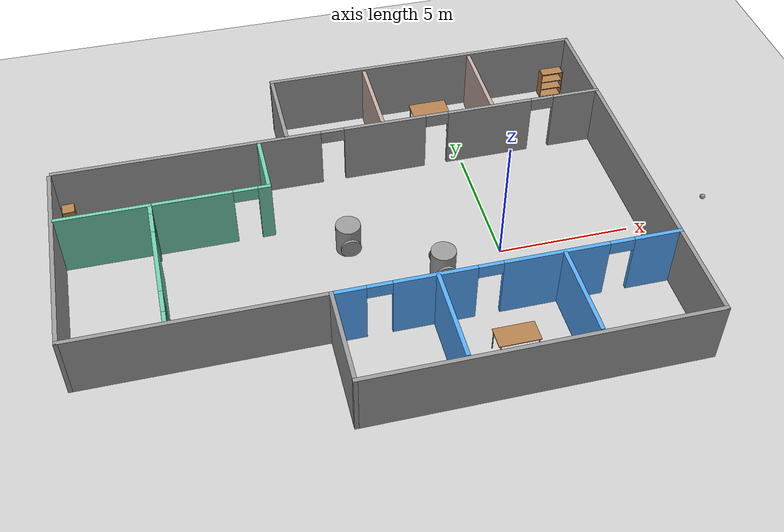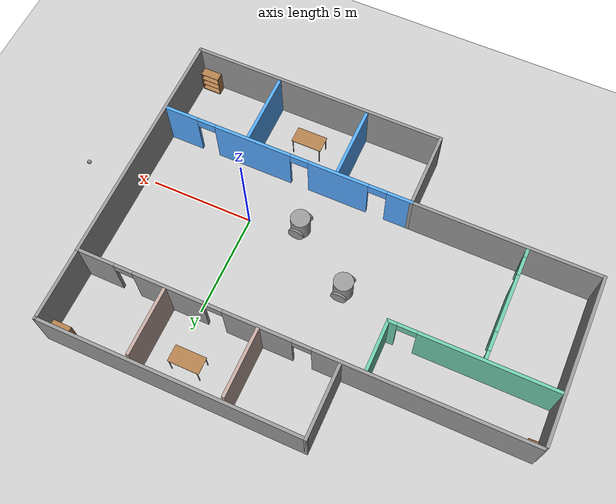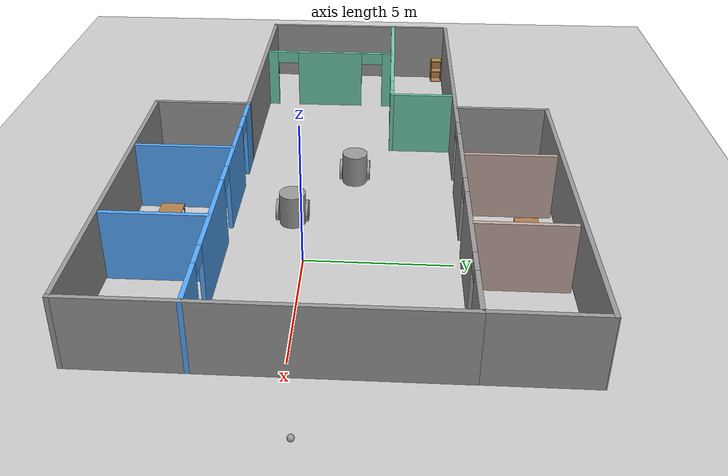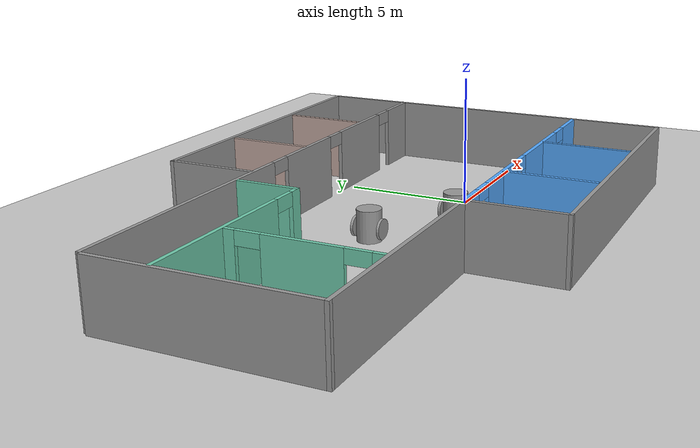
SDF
<sdf version="1.6">
 <world name="default">
  <light name="sun" type="directional">
   <pose>0 0 10 0 -0 0</pose>
   <diffuse>0.8 0.8 0.8 1</diffuse>
   <specular>0.2 0.2 0.2 1</specular>
   <attenuation>
    <range>1000</range>
    <constant>0.9</constant>
    <linear>0.01</linear>
    <quadratic>0.001</quadratic>
   </attenuation>
   <direction>-0.5 0.1 -0.9</direction>
  </light>
  <model name="ground_plane">
   <static>1</static>
   <link name="link">
    <collision name="collision">
     <geometry><plane><normal>0 0 1</normal><size>100 100</size></plane></geometry>
     <surface>
      <contact><collide_bitmask>65535</collide_bitmask></contact>
      <friction><ode><mu>100</mu><mu2>50</mu2></ode></friction>
     </surface>
    </collision>
    <visual name="visual">
     <cast_shadows>0</cast_shadows>
     <geometry><plane><normal>0 0 1</normal><size>100 100</size></plane></geometry>
     <material>
      <script><uri>file://media/materials/scripts/gazebo.material</uri><name>Gazebo/Grey</name></script>
     </material>
    </visual>
   </link>
  </model>
  <gravity>0 0 -9.8</gravity>
  <magnetic_field>6e-06 2.3e-05 -4.2e-05</magnetic_field>
  <atmosphere type="adiabatic"/>
  <physics name="default_physics" default="0" type="ode">
   <max_step_size>0.001</max_step_size>
   <real_time_factor>1</real_time_factor>
   <real_time_update_rate>1000</real_time_update_rate>
  </physics>
  <scene><ambient>0.4 0.4 0.4 1</ambient><background>0.7 0.7 0.7 1</background><shadows>1</shadows></scene>
  <spherical_coordinates>
   <surface_model>EARTH_WGS84</surface_model>
   <latitude_deg>0</latitude_deg>
   <longitude_deg>0</longitude_deg>
   <elevation>0</elevation>
   <heading_deg>0</heading_deg>
  </spherical_coordinates>
  <model name="Building">
   <pose>-5.09713 1.21876 0 0 -0 0</pose>
   <link name="Wall_0">
    <pose>0.05 4.06916 0 0 -0 0</pose>
    <visual name="Wall_0_Visual_0">
     <pose>-5.59523 0 1.25 0 -0 0</pose>
     <geometry><box><size>10.0595 0.15 2.5</size></box></geometry>
     <material>
      <script><uri>file://media/materials/scripts/gazebo.material</uri><name>Gazebo/Grey</name></script>
      <ambient>1 1 1 1</ambient>
     </material>
     <meta><layer>0</layer></meta>
    </visual>
    <collision name="Wall_0_Collision_0">
     <geometry><box><size>10.0595 0.15 2.5</size></box></geometry>
     <pose>-5.59523 0 1.25 0 -0 0</pose>
    </collision>
    <visual name="Wall_0_Visual_1">
     <pose>1.94439 0 1.25 0 -0 0</pose>
     <geometry><box><size>3.21969 0.15 2.5</size></box></geometry>
     <material>
      <script><uri>file://media/materials/scripts/gazebo.material</uri><name>Gazebo/Grey</name></script>
      <ambient>1 1 1 1</ambient>
     </material>
     <meta><layer>0</layer></meta>
    </visual>
    <collision name="Wall_0_Collision_1">
     <geometry><box><size>3.21969 0.15 2.5</size></box></geometry>
     <pose>1.94439 0 1.25 0 -0 0</pose>
    </collision>
    <visual name="Wall_0_Visual_2">
     <pose>6.14433 0 1.25 0 -0 0</pose>
     <geometry><box><size>3.3802 0.15 2.5</size></box></geometry>
     <material>
      <script><uri>file://media/materials/scripts/gazebo.material</uri><name>Gazebo/Grey</name></script>
      <ambient>1 1 1 1</ambient>
     </material>
     <meta><layer>0</layer></meta>
    </visual>
    <collision name="Wall_0_Collision_2">
     <geometry><box><size>3.3802 0.15 2.5</size></box></geometry>
     <pose>6.14433 0 1.25 0 -0 0</pose>
    </collision>
    <visual name="Wall_0_Visual_3">
     <pose>9.67972 0 1.25 0 -0 0</pose>
     <geometry><box><size>1.89057 0.15 2.5</size></box></geometry>
     <material>
      <script><uri>file://media/materials/scripts/gazebo.material</uri><name>Gazebo/Grey</name></script>
      <ambient>1 1 1 1</ambient>
     </material>
     <meta><layer>0</layer></meta>
    </visual>
    <collision name="Wall_0_Collision_3">
     <geometry><box><size>1.89057 0.15 2.5</size></box></geometry>
     <pose>9.67972 0 1.25 0 -0 0</pose>
    </collision>
    <visual name="Wall_0_Visual_4">
     <pose>-0.11546 0 2.25 0 -0 0</pose>
     <geometry><box><size>0.9 0.15 0.5</size></box></geometry>
     <material>
      <script><uri>file://media/materials/scripts/gazebo.material</uri><name>Gazebo/Grey</name></script>
      <ambient>1 1 1 1</ambient>
     </material>
     <meta><layer>0</layer></meta>
    </visual>
    <collision name="Wall_0_Collision_4">
     <geometry><box><size>0.9 0.15 0.5</size></box></geometry>
     <pose>-0.11546 0 2.25 0 -0 0</pose>
    </collision>
    <visual name="Wall_0_Visual_5">
     <pose>4.00423 0 2.25 0 -0 0</pose>
     <geometry><box><size>0.9 0.15 0.5</size></box></geometry>
     <material>
      <script><uri>file://media/materials/scripts/gazebo.material</uri><name>Gazebo/Grey</name></script>
      <ambient>1 1 1 1</ambient>
     </material>
     <meta><layer>0</layer></meta>
    </visual>
    <collision name="Wall_0_Collision_5">
     <geometry><box><size>0.9 0.15 0.5</size></box></geometry>
     <pose>4.00423 0 2.25 0 -0 0</pose>
    </collision>
    <visual name="Wall_0_Visual_6">
     <pose>8.28443 0 2.25 0 -0 0</pose>
     <geometry><box><size>0.9 0.15 0.5</size></box></geometry>
     <material>
      <script><uri>file://media/materials/scripts/gazebo.material</uri><name>Gazebo/Grey</name></script>
      <ambient>1 1 1 1</ambient>
     </material>
     <meta><layer>0</layer></meta>
    </visual>
    <collision name="Wall_0_Collision_6">
     <geometry><box><size>0.9 0.15 0.5</size></box></geometry>
     <pose>8.28443 0 2.25 0 -0 0</pose>
    </collision>
   </link>
   <link name="Wall_1">
    <collision name="Wall_1_Collision">
     <geometry><box><size>11.75 0.15 2.5</size></box></geometry>
     <pose>0 0 1.25 0 -0 0</pose>
    </collision>
    <visual name="Wall_1_Visual">
     <pose>0 0 1.25 0 -0 0</pose>
     <geometry><box><size>11.75 0.15 2.5</size></box></geometry>
     <material>
      <script><uri>file://media/materials/scripts/gazebo.material</uri><name>Gazebo/Grey</name></script>
      <ambient>1 1 1 1</ambient>
     </material>
     <meta><layer>0</layer></meta>
    </visual>
    <pose>10.6 -1.73084 0 0 0 -1.5708</pose>
   </link>
   <link name="Wall_11">
    <collision name="Wall_11_Collision">
     <geometry><box><size>3.5 0.15 2.5</size></box></geometry>
     <pose>0 0 1.25 0 -0 0</pose>
    </collision>
    <visual name="Wall_11_Visual">
     <pose>0 0 1.25 0 -0 0</pose>
     <geometry><box><size>3.5 0.15 2.5</size></box></geometry>
     <material>
      <script><uri>file://media/materials/scripts/gazebo.material</uri><name>Gazebo/Grey</name></script>
      <ambient>0.333333 0.666667 1 1</ambient>
     </material>
     <meta><layer>0</layer></meta>
    </visual>
    <pose>6.35522 -5.68166 0 0 0 -1.5708</pose>
   </link>
   <link name="Wall_13">
    <collision name="Wall_13_Collision">
     <geometry><box><size>3.5 0.15 2.5</size></box></geometry>
     <pose>0 0 1.25 0 -0 0</pose>
    </collision>
    <visual name="Wall_13_Visual">
     <pose>0 0 1.25 0 -0 0</pose>
     <geometry><box><size>3.5 0.15 2.5</size></box></geometry>
     <material>
      <script><uri>file://media/materials/scripts/gazebo.material</uri><name>Gazebo/Grey</name></script>
      <ambient>1 1 1 1</ambient>
     </material>
     <meta><layer>0</layer></meta>
    </visual>
    <pose>-1.8205 5.85585 0 0 -0 1.5708</pose>
   </link>
   <link name="Wall_14">
    <collision name="Wall_14_Collision">
     <geometry><box><size>12.5612 0.15 2.5</size></box></geometry>
     <pose>0 0 1.25 0 -0 0</pose>
    </collision>
    <visual name="Wall_14_Visual">
     <pose>0 0 1.25 0 -0 0</pose>
     <geometry><box><size>12.5612 0.15 2.5</size></box></geometry>
     <material>
      <script><uri>file://media/materials/scripts/gazebo.material</uri><name>Gazebo/Grey</name></script>
      <ambient>1 1 1 1</ambient>
     </material>
     <meta><layer>0</layer></meta>
    </visual>
    <pose>4.38509 7.53085 0 0 -0 0</pose>
   </link>
   <link name="Wall_15">
    <collision name="Wall_15_Collision">
     <geometry><box><size>3.5 0.15 2.5</size></box></geometry>
     <pose>0 0 1.25 0 -0 0</pose>
    </collision>
    <visual name="Wall_15_Visual">
     <pose>0 0 1.25 0 -0 0</pose>
     <geometry><box><size>3.5 0.15 2.5</size></box></geometry>
     <material>
      <script><uri>file://media/materials/scripts/gazebo.material</uri><name>Gazebo/Grey</name></script>
      <ambient>1 1 1 1</ambient>
     </material>
     <meta><layer>0</layer></meta>
    </visual>
    <pose>10.5907 5.82526 0 0 0 -1.5708</pose>
   </link>
   <link name="Wall_18">
    <collision name="Wall_18_Collision">
     <geometry><box><size>3.25 0.15 2.5</size></box></geometry>
     <pose>0 0 1.25 0 -0 0</pose>
    </collision>
    <visual name="Wall_18_Visual">
     <pose>0 0 1.25 0 -0 0</pose>
     <geometry><box><size>3.25 0.15 2.5</size></box></geometry>
     <material>
      <script><uri>file://media/materials/scripts/gazebo.material</uri><name>Gazebo/Grey</name></script>
      <ambient>0.760784 0.662745 0.627451 1</ambient>
     </material>
     <meta><layer>0</layer></meta>
    </visual>
    <pose>1.91413 5.73931 0 0 -0 1.5708</pose>
   </link>
   <link name="Wall_2">
    <collision name="Wall_2_Collision">
     <geometry><box><size>12.5 0.15 2.5</size></box></geometry>
     <pose>0 0 1.25 0 -0 0</pose>
    </collision>
    <visual name="Wall_2_Visual">
     <pose>0 0 1.25 0 -0 0</pose>
     <geometry><box><size>12.5 0.15 2.5</size></box></geometry>
     <material>
      <script><uri>file://media/materials/scripts/gazebo.material</uri><name>Gazebo/Grey</name></script>
      <ambient>1 1 1 1</ambient>
     </material>
     <meta><layer>0</layer></meta>
    </visual>
    <pose>4.425 -7.53085 0 0 -0 3.14159</pose>
   </link>
   <link name="Wall_20">
    <collision name="Wall_20_Collision">
     <geometry><box><size>3.25 0.15 2.5</size></box></geometry>
     <pose>0 0 1.25 0 -0 0</pose>
    </collision>
    <visual name="Wall_20_Visual">
     <pose>0 0 1.25 0 -0 0</pose>
     <geometry><box><size>3.25 0.15 2.5</size></box></geometry>
     <material>
      <script><uri>file://media/materials/scripts/gazebo.material</uri><name>Gazebo/Grey</name></script>
      <ambient>0.760784 0.662745 0.627451 1</ambient>
     </material>
     <meta><layer>0</layer></meta>
    </visual>
    <pose>6.30134 5.73931 0 0 -0 1.5708</pose>
   </link>
   <link name="Wall_22">
    <collision name="Wall_22_Collision">
     <geometry><box><size>2.5 0.15 2.5</size></box></geometry>
     <pose>0 0 1.25 0 -0 0</pose>
    </collision>
    <visual name="Wall_22_Visual">
     <pose>0 0 1.25 0 -0 0</pose>
     <geometry><box><size>2.5 0.15 2.5</size></box></geometry>
     <material>
      <script><uri>file://media/materials/scripts/gazebo.material</uri><name>Gazebo/Grey</name></script>
      <ambient>0.435294 0.796078 0.67451 1</ambient>
     </material>
     <meta><layer>0</layer></meta>
    </visual>
    <pose>-2.90109 2.8003 0 0 0 -1.5708</pose>
   </link>
   <link name="Wall_23">
    <pose>-6.70109 1.6253 0 0 -0 3.14159</pose>
    <visual name="Wall_23_Visual_0">
     <pose>-3.63448 0 1.25 0 -0 0</pose>
     <geometry><box><size>0.48104 0.15 2.5</size></box></geometry>
     <material>
      <script><uri>file://media/materials/scripts/gazebo.material</uri><name>Gazebo/Grey</name></script>
      <ambient>0.435294 0.796078 0.67451 1</ambient>
     </material>
     <meta><layer>0</layer></meta>
    </visual>
    <collision name="Wall_23_Collision_0">
     <geometry><box><size>0.48104 0.15 2.5</size></box></geometry>
     <pose>-3.63448 0 1.25 0 -0 0</pose>
    </collision>
    <visual name="Wall_23_Visual_1">
     <pose>0.69052 0 1.25 0 -0 0</pose>
     <geometry><box><size>6.36896 0.15 2.5</size></box></geometry>
     <material>
      <script><uri>file://media/materials/scripts/gazebo.material</uri><name>Gazebo/Grey</name></script>
      <ambient>0.435294 0.796078 0.67451 1</ambient>
     </material>
     <meta><layer>0</layer></meta>
    </visual>
    <collision name="Wall_23_Collision_1">
     <geometry><box><size>6.36896 0.15 2.5</size></box></geometry>
     <pose>0.69052 0 1.25 0 -0 0</pose>
    </collision>
    <visual name="Wall_23_Visual_2">
     <pose>-2.94396 0 2.25 0 -0 0</pose>
     <geometry><box><size>0.9 0.15 0.5</size></box></geometry>
     <material>
      <script><uri>file://media/materials/scripts/gazebo.material</uri><name>Gazebo/Grey</name></script>
      <ambient>0.435294 0.796078 0.67451 1</ambient>
     </material>
     <meta><layer>0</layer></meta>
    </visual>
    <collision name="Wall_23_Collision_2">
     <geometry><box><size>0.9 0.15 0.5</size></box></geometry>
     <pose>-2.94396 0 2.25 0 -0 0</pose>
    </collision>
   </link>
   <link name="Wall_25">
    <pose>-7.18129 -1.10732 0 0 0 -1.5708</pose>
    <visual name="Wall_25_Visual_0">
     <pose>-2.50948 0 1.25 0 -0 0</pose>
     <geometry><box><size>0.48104 0.15 2.5</size></box></geometry>
     <material>
      <script><uri>file://media/materials/scripts/gazebo.material</uri><name>Gazebo/Grey</name></script>
      <ambient>0.435294 0.796078 0.67451 1</ambient>
     </material>
     <meta><layer>0</layer></meta>
    </visual>
    <collision name="Wall_25_Collision_0">
     <geometry><box><size>0.48104 0.15 2.5</size></box></geometry>
     <pose>-2.50948 0 1.25 0 -0 0</pose>
    </collision>
    <visual name="Wall_25_Visual_1">
     <pose>0.026876 0 1.25 0 -0 0</pose>
     <geometry><box><size>2.79167 0.15 2.5</size></box></geometry>
     <material>
      <script><uri>file://media/materials/scripts/gazebo.material</uri><name>Gazebo/Grey</name></script>
      <ambient>0.435294 0.796078 0.67451 1</ambient>
     </material>
     <meta><layer>0</layer></meta>
    </visual>
    <collision name="Wall_25_Collision_1">
     <geometry><box><size>2.79167 0.15 2.5</size></box></geometry>
     <pose>0.026876 0 1.25 0 -0 0</pose>
    </collision>
    <visual name="Wall_25_Visual_2">
     <pose>2.53636 0 1.25 0 -0 0</pose>
     <geometry><box><size>0.427287 0.15 2.5</size></box></geometry>
     <material>
      <script><uri>file://media/materials/scripts/gazebo.material</uri><name>Gazebo/Grey</name></script>
      <ambient>0.435294 0.796078 0.67451 1</ambient>
     </material>
     <meta><layer>0</layer></meta>
    </visual>
    <collision name="Wall_25_Collision_2">
     <geometry><box><size>0.427287 0.15 2.5</size></box></geometry>
     <pose>2.53636 0 1.25 0 -0 0</pose>
    </collision>
    <visual name="Wall_25_Visual_3">
     <pose>-1.81896 0 2.25 0 -0 0</pose>
     <geometry><box><size>0.9 0.15 0.5</size></box></geometry>
     <material>
      <script><uri>file://media/materials/scripts/gazebo.material</uri><name>Gazebo/Grey</name></script>
      <ambient>0.435294 0.796078 0.67451 1</ambient>
     </material>
     <meta><layer>0</layer></meta>
    </visual>
    <collision name="Wall_25_Collision_3">
     <geometry><box><size>0.9 0.15 0.5</size></box></geometry>
     <pose>-1.81896 0 2.25 0 -0 0</pose>
    </collision>
    <visual name="Wall_25_Visual_4">
     <pose>1.87271 0 2.25 0 -0 0</pose>
     <geometry><box><size>0.9 0.15 0.5</size></box></geometry>
     <material>
      <script><uri>file://media/materials/scripts/gazebo.material</uri><name>Gazebo/Grey</name></script>
      <ambient>0.435294 0.796078 0.67451 1</ambient>
     </material>
     <meta><layer>0</layer></meta>
    </visual>
    <collision name="Wall_25_Collision_4">
     <geometry><box><size>0.9 0.15 0.5</size></box></geometry>
     <pose>1.87271 0 2.25 0 -0 0</pose>
    </collision>
   </link>
   <link name="Wall_3">
    <collision name="Wall_3_Collision">
     <geometry><box><size>3.75 0.15 2.5</size></box></geometry>
     <pose>0 0 1.25 0 -0 0</pose>
    </collision>
    <visual name="Wall_3_Visual">
     <pose>0 0 1.25 0 -0 0</pose>
     <geometry><box><size>3.75 0.15 2.5</size></box></geometry>
     <material>
      <script><uri>file://media/materials/scripts/gazebo.material</uri><name>Gazebo/Grey</name></script>
      <ambient>1 1 1 1</ambient>
     </material>
     <meta><layer>0</layer></meta>
    </visual>
    <pose>-1.75 -5.73084 0 0 -0 1.5708</pose>
   </link>
   <link name="Wall_4">
    <collision name="Wall_4_Collision">
     <geometry><box><size>9 0.15 2.5</size></box></geometry>
     <pose>0 0 1.25 0 -0 0</pose>
    </collision>
    <visual name="Wall_4_Visual">
     <pose>0 0 1.25 0 -0 0</pose>
     <geometry><box><size>9 0.15 2.5</size></box></geometry>
     <material>
      <script><uri>file://media/materials/scripts/gazebo.material</uri><name>Gazebo/Grey</name></script>
      <ambient>1 1 1 1</ambient>
     </material>
     <meta><layer>0</layer></meta>
    </visual>
    <pose>-6.175 -3.93085 0 0 -0 3.14159</pose>
   </link>
   <link name="Wall_5">
    <collision name="Wall_5_Collision">
     <geometry><box><size>8 0.15 2.5</size></box></geometry>
     <pose>0 0 1.25 0 -0 0</pose>
    </collision>
    <visual name="Wall_5_Visual">
     <pose>0 0 1.25 0 -0 0</pose>
     <geometry><box><size>8 0.15 2.5</size></box></geometry>
     <material>
      <script><uri>file://media/materials/scripts/gazebo.material</uri><name>Gazebo/Grey</name></script>
      <ambient>1 1 1 1</ambient>
     </material>
     <meta><layer>0</layer></meta>
    </visual>
    <pose>-10.6 -0.005845 0 0 -0 1.5708</pose>
   </link>
   <link name="Wall_7">
    <pose>4.425 -3.93085 0 0 -0 0</pose>
    <visual name="Wall_7_Visual_0">
     <pose>-5.62198 0 1.25 0 -0 0</pose>
     <geometry><box><size>1.25604 0.15 2.5</size></box></geometry>
     <material>
      <script><uri>file://media/materials/scripts/gazebo.material</uri><name>Gazebo/Grey</name></script>
      <ambient>0.333333 0.666667 1 1</ambient>
     </material>
     <meta><layer>0</layer></meta>
    </visual>
    <collision name="Wall_7_Collision_0">
     <geometry><box><size>1.25604 0.15 2.5</size></box></geometry>
     <pose>-5.62198 0 1.25 0 -0 0</pose>
    </collision>
    <visual name="Wall_7_Visual_1">
     <pose>-2.61787 0 1.25 0 -0 0</pose>
     <geometry><box><size>2.95218 0.15 2.5</size></box></geometry>
     <material>
      <script><uri>file://media/materials/scripts/gazebo.material</uri><name>Gazebo/Grey</name></script>
      <ambient>0.333333 0.666667 1 1</ambient>
     </material>
     <meta><layer>0</layer></meta>
    </visual>
    <collision name="Wall_7_Collision_1">
     <geometry><box><size>2.95218 0.15 2.5</size></box></geometry>
     <pose>-2.61787 0 1.25 0 -0 0</pose>
    </collision>
    <visual name="Wall_7_Visual_2">
     <pose>1.66233 0 1.25 0 -0 0</pose>
     <geometry><box><size>3.80822 0.15 2.5</size></box></geometry>
     <material>
      <script><uri>file://media/materials/scripts/gazebo.material</uri><name>Gazebo/Grey</name></script>
      <ambient>0.333333 0.666667 1 1</ambient>
     </material>
     <meta><layer>0</layer></meta>
    </visual>
    <collision name="Wall_7_Collision_2">
     <geometry><box><size>3.80822 0.15 2.5</size></box></geometry>
     <pose>1.66233 0 1.25 0 -0 0</pose>
    </collision>
    <visual name="Wall_7_Visual_3">
     <pose>5.35822 0 1.25 0 -0 0</pose>
     <geometry><box><size>1.78356 0.15 2.5</size></box></geometry>
     <material>
      <script><uri>file://media/materials/scripts/gazebo.material</uri><name>Gazebo/Grey</name></script>
      <ambient>0.333333 0.666667 1 1</ambient>
     </material>
     <meta><layer>0</layer></meta>
    </visual>
    <collision name="Wall_7_Collision_3">
     <geometry><box><size>1.78356 0.15 2.5</size></box></geometry>
     <pose>5.35822 0 1.25 0 -0 0</pose>
    </collision>
    <visual name="Wall_7_Visual_4">
     <pose>-4.54396 0 2.25 0 -0 0</pose>
     <geometry><box><size>0.9 0.15 0.5</size></box></geometry>
     <material>
      <script><uri>file://media/materials/scripts/gazebo.material</uri><name>Gazebo/Grey</name></script>
      <ambient>0.333333 0.666667 1 1</ambient>
     </material>
     <meta><layer>0</layer></meta>
    </visual>
    <collision name="Wall_7_Collision_4">
     <geometry><box><size>0.9 0.15 0.5</size></box></geometry>
     <pose>-4.54396 0 2.25 0 -0 0</pose>
    </collision>
    <visual name="Wall_7_Visual_5">
     <pose>-0.691783 0 2.25 0 -0 0</pose>
     <geometry><box><size>0.9 0.15 0.5</size></box></geometry>
     <material>
      <script><uri>file://media/materials/scripts/gazebo.material</uri><name>Gazebo/Grey</name></script>
      <ambient>0.333333 0.666667 1 1</ambient>
     </material>
     <meta><layer>0</layer></meta>
    </visual>
    <collision name="Wall_7_Collision_5">
     <geometry><box><size>0.9 0.15 0.5</size></box></geometry>
     <pose>-0.691783 0 2.25 0 -0 0</pose>
    </collision>
    <visual name="Wall_7_Visual_6">
     <pose>4.01644 0 2.25 0 -0 0</pose>
     <geometry><box><size>0.9 0.15 0.5</size></box></geometry>
     <material>
      <script><uri>file://media/materials/scripts/gazebo.material</uri><name>Gazebo/Grey</name></script>
      <ambient>0.333333 0.666667 1 1</ambient>
     </material>
     <meta><layer>0</layer></meta>
    </visual>
    <collision name="Wall_7_Collision_6">
     <geometry><box><size>0.9 0.15 0.5</size></box></geometry>
     <pose>4.01644 0 2.25 0 -0 0</pose>
    </collision>
   </link>
   <link name="Wall_9">
    <collision name="Wall_9_Collision">
     <geometry><box><size>3.5 0.15 2.5</size></box></geometry>
     <pose>0 0 1.25 0 -0 0</pose>
    </collision>
    <visual name="Wall_9_Visual">
     <pose>0 0 1.25 0 -0 0</pose>
     <geometry><box><size>3.5 0.15 2.5</size></box></geometry>
     <material>
      <script><uri>file://media/materials/scripts/gazebo.material</uri><name>Gazebo/Grey</name></script>
      <ambient>0.333333 0.666667 1 1</ambient>
     </material>
     <meta><layer>0</layer></meta>
    </visual>
    <pose>1.88904 -5.68166 0 0 0 -1.5708</pose>
   </link>
   <static>1</static>
  </model>
  <model name="bookshelf">
   <static>1</static>
   <link name="link">
    <inertial><mass>1</mass></inertial>
    <collision name="back">
     <pose>0 0.005 0.6 0 -0 0</pose>
     <geometry><box><size>0.9 0.01 1.2</size></box></geometry>
    </collision>
    <visual name="visual1">
     <pose>0 0.005 0.6 0 -0 0</pose>
     <geometry><box><size>0.9 0.01 1.2</size></box></geometry>
     <material>
      <script><uri>file://media/materials/scripts/gazebo.material</uri><name>Gazebo/Wood</name></script>
     </material>
    </visual>
    <collision name="left_side">
     <pose>0.45 -0.195 0.6 0 -0 0</pose>
     <geometry><box><size>0.02 0.4 1.2</size></box></geometry>
    </collision>
    <visual name="visual2">
     <pose>0.45 -0.195 0.6 0 -0 0</pose>
     <geometry><box><size>0.02 0.4 1.2</size></box></geometry>
     <material>
      <script><uri>file://media/materials/scripts/gazebo.material</uri><name>Gazebo/Wood</name></script>
     </material>
    </visual>
    <collision name="right_side">
     <pose>-0.45 -0.195 0.6 0 -0 0</pose>
     <geometry><box><size>0.02 0.4 1.2</size></box></geometry>
    </collision>
    <visual name="visual3">
     <pose>-0.45 -0.195 0.6 0 -0 0</pose>
     <geometry><box><size>0.02 0.4 1.2</size></box></geometry>
     <material>
      <script><uri>file://media/materials/scripts/gazebo.material</uri><name>Gazebo/Wood</name></script>
     </material>
    </visual>
    <collision name="bottom">
     <pose>0 -0.195 0.03 0 -0 0</pose>
     <geometry><box><size>0.88 0.4 0.06</size></box></geometry>
    </collision>
    <visual name="visual4">
     <pose>0 -0.195 0.03 0 -0 0</pose>
     <geometry><box><size>0.88 0.4 0.06</size></box></geometry>
     <material>
      <script><uri>file://media/materials/scripts/gazebo.material</uri><name>Gazebo/Wood</name></script>
     </material>
    </visual>
    <collision name="top">
     <pose>0 -0.195 1.19 0 -0 0</pose>
     <geometry><box><size>0.88 0.4 0.02</size></box></geometry>
    </collision>
    <visual name="visual5">
     <pose>0 -0.195 1.19 0 -0 0</pose>
     <geometry><box><size>0.88 0.4 0.02</size></box></geometry>
     <material>
      <script><uri>file://media/materials/scripts/gazebo.material</uri><name>Gazebo/Wood</name></script>
     </material>
    </visual>
    <collision name="low_shelf">
     <pose>0 -0.195 0.43 0 -0 0</pose>
     <geometry><box><size>0.88 0.4 0.02</size></box></geometry>
    </collision>
    <visual name="visual6">
     <pose>0 -0.195 0.43 0 -0 0</pose>
     <geometry><box><size>0.88 0.4 0.02</size></box></geometry>
     <material>
      <script><uri>file://media/materials/scripts/gazebo.material</uri><name>Gazebo/Wood</name></script>
     </material>
    </visual>
    <collision name="high_shelf">
     <pose>0 -0.195 0.8 0 -0 0</pose>
     <geometry><box><size>0.88 0.4 0.02</size></box></geometry>
    </collision>
    <visual name="visual7">
     <pose>0 -0.195 0.8 0 -0 0</pose>
     <geometry><box><size>0.88 0.4 0.02</size></box></geometry>
     <material>
      <script><uri>file://media/materials/scripts/gazebo.material</uri><name>Gazebo/Wood</name></script>
     </material>
    </visual>
   </link>
   <pose>4.92711 -6.18457 0 0 0 -3.13842</pose>
  </model>
  <model name="table">
   <static>1</static>
   <link name="link">
    <collision name="surface">
     <pose>0 0 1 0 -0 0</pose>
     <geometry><box><size>1.5 0.8 0.03</size></box></geometry>
     <surface><friction><ode><mu>0.6</mu><mu2>0.6</mu2></ode></friction></surface>
    </collision>
    <visual name="visual1">
     <pose>0 0 1 0 -0 0</pose>
     <geometry><box><size>1.5 0.8 0.03</size></box></geometry>
     <material>
      <script><uri>file://media/materials/scripts/gazebo.material</uri><name>Gazebo/Wood</name></script>
     </material>
    </visual>
    <collision name="front_left_leg">
     <pose>0.68 0.38 0.5 0 -0 0</pose>
     <geometry><cylinder><radius>0.02</radius><length>1</length></cylinder></geometry>
    </collision>
    <visual name="front_left_leg">
     <pose>0.68 0.38 0.5 0 -0 0</pose>
     <geometry><cylinder><radius>0.02</radius><length>1</length></cylinder></geometry>
     <material>
      <script><uri>file://media/materials/scripts/gazebo.material</uri><name>Gazebo/Grey</name></script>
     </material>
    </visual>
    <collision name="front_right_leg">
     <pose>0.68 -0.38 0.5 0 -0 0</pose>
     <geometry><cylinder><radius>0.02</radius><length>1</length></cylinder></geometry>
    </collision>
    <visual name="front_right_leg">
     <pose>0.68 -0.38 0.5 0 -0 0</pose>
     <geometry><cylinder><radius>0.02</radius><length>1</length></cylinder></geometry>
     <material>
      <script><uri>file://media/materials/scripts/gazebo.material</uri><name>Gazebo/Grey</name></script>
     </material>
    </visual>
    <collision name="back_right_leg">
     <pose>-0.68 -0.38 0.5 0 -0 0</pose>
     <geometry><cylinder><radius>0.02</radius><length>1</length></cylinder></geometry>
    </collision>
    <visual name="back_right_leg">
     <pose>-0.68 -0.38 0.5 0 -0 0</pose>
     <geometry><cylinder><radius>0.02</radius><length>1</length></cylinder></geometry>
     <material>
      <script><uri>file://media/materials/scripts/gazebo.material</uri><name>Gazebo/Grey</name></script>
     </material>
    </visual>
    <collision name="back_left_leg">
     <pose>-0.68 0.38 0.5 0 -0 0</pose>
     <geometry><cylinder><radius>0.02</radius><length>1</length></cylinder></geometry>
    </collision>
    <visual name="back_left_leg">
     <pose>-0.68 0.38 0.5 0 -0 0</pose>
     <geometry><cylinder><radius>0.02</radius><length>1</length></cylinder></geometry>
     <material>
      <script><uri>file://media/materials/scripts/gazebo.material</uri><name>Gazebo/Grey</name></script>
     </material>
    </visual>
   </link>
   <pose>-0.971945 -4.64553 0 0 -0 0</pose>
  </model>
  <model name="cabinet">
   <static>1</static>
   <link name="cabinet_bottom_plate">
    <inertial>
     <pose>0 0 -1 0 -0 0</pose>
     <inertia><ixx>2.05</ixx><ixy>0</ixy><ixz>0</ixz><iyy>2.05</iyy><iyz>0</iyz><izz>2.05</izz></inertia>
     <mass>25</mass>
    </inertial>
    <collision name="cabinet_bottom_plate_geom">
     <pose>0 0 0.01 0 -0 0</pose>
     <geometry><box><size>0.45 0.45 0.02</size></box></geometry>
    </collision>
    <visual name="cabinet_bottom_plate_geom_visual">
     <pose>0 0 0.01 0 -0 0</pose>
     <geometry><box><size>0.45 0.45 0.02</size></box></geometry>
     <material>
      <script><uri>file://media/materials/scripts/gazebo.material</uri><name>Gazebo/Wood</name></script>
     </material>
    </visual>
    <collision name="cabinet_bottom_plate_geom_cabinet_back_plate">
     <pose>0.235 0 0.51 0 -0 0</pose>
     <geometry><box><size>0.02 0.45 1.02</size></box></geometry>
    </collision>
    <visual name="cabinet_bottom_plate_geom_cabinet_back_plate_visual">
     <pose>0.235 0 0.51 0 -0 0</pose>
     <geometry><box><size>0.02 0.45 1.02</size></box></geometry>
     <material>
      <script><uri>file://media/materials/scripts/gazebo.material</uri><name>Gazebo/Wood</name></script>
     </material>
    </visual>
    <collision name="cabinet_bottom_plate_geom_cabinet_left_plate">
     <pose>0 0.235 0.51 0 -0 0</pose>
     <geometry><box><size>0.45 0.02 1.02</size></box></geometry>
    </collision>
    <visual name="cabinet_bottom_plate_geom_cabinet_left_plate_visual">
     <pose>0 0.235 0.51 0 -0 0</pose>
     <geometry><box><size>0.45 0.02 1.02</size></box></geometry>
     <material>
      <script><uri>file://media/materials/scripts/gazebo.material</uri><name>Gazebo/Wood</name></script>
     </material>
    </visual>
    <collision name="cabinet_bottom_plate_geom_cabinet_middle_plate">
     <pose>0 0 0.51 0 -0 0</pose>
     <geometry><box><size>0.45 0.45 0.02</size></box></geometry>
    </collision>
    <visual name="cabinet_bottom_plate_geom_cabinet_middle_plate_visual">
     <pose>0 0 0.51 0 -0 0</pose>
     <geometry><box><size>0.45 0.45 0.02</size></box></geometry>
     <material>
      <script><uri>file://media/materials/scripts/gazebo.material</uri><name>Gazebo/Wood</name></script>
     </material>
    </visual>
    <collision name="cabinet_bottom_plate_geom_cabinet_right_plate">
     <pose>0 -0.235 0.51 0 -0 0</pose>
     <geometry><box><size>0.45 0.02 1.02</size></box></geometry>
    </collision>
    <visual name="cabinet_bottom_plate_geom_cabinet_right_plate_visual">
     <pose>0 -0.235 0.51 0 -0 0</pose>
     <geometry><box><size>0.45 0.02 1.02</size></box></geometry>
     <material>
      <script><uri>file://media/materials/scripts/gazebo.material</uri><name>Gazebo/Wood</name></script>
     </material>
    </visual>
    <collision name="cabinet_bottom_plate_geom_cabinet_top_plate">
     <pose>0 0 1.01 0 -0 0</pose>
     <geometry><box><size>0.45 0.45 0.02</size></box></geometry>
    </collision>
    <visual name="cabinet_bottom_plate_geom_cabinet_top_plate_visual">
     <pose>0 0 1.01 0 -0 0</pose>
     <geometry><box><size>0.45 0.45 0.02</size></box></geometry>
     <material>
      <script><uri>file://media/materials/scripts/gazebo.material</uri><name>Gazebo/Wood</name></script>
     </material>
    </visual>
   </link>
   <pose>-15.3051 4.93637 0 0 0 -3.08454</pose>
  </model>
  <model name="bookshelf_clone">
   <static>1</static>
   <link name="link">
    <inertial><mass>1</mass></inertial>
    <collision name="back">
     <pose>0 0.005 0.6 0 -0 0</pose>
     <geometry><box><size>0.9 0.01 1.2</size></box></geometry>
    </collision>
    <visual name="visual1">
     <pose>0 0.005 0.6 0 -0 0</pose>
     <geometry><box><size>0.9 0.01 1.2</size></box></geometry>
     <material>
      <script><uri>file://media/materials/scripts/gazebo.material</uri><name>Gazebo/Wood</name></script>
     </material>
    </visual>
    <collision name="left_side">
     <pose>0.45 -0.195 0.6 0 -0 0</pose>
     <geometry><box><size>0.02 0.4 1.2</size></box></geometry>
    </collision>
    <visual name="visual2">
     <pose>0.45 -0.195 0.6 0 -0 0</pose>
     <geometry><box><size>0.02 0.4 1.2</size></box></geometry>
     <material>
      <script><uri>file://media/materials/scripts/gazebo.material</uri><name>Gazebo/Wood</name></script>
     </material>
    </visual>
    <collision name="right_side">
     <pose>-0.45 -0.195 0.6 0 -0 0</pose>
     <geometry><box><size>0.02 0.4 1.2</size></box></geometry>
    </collision>
    <visual name="visual3">
     <pose>-0.45 -0.195 0.6 0 -0 0</pose>
     <geometry><box><size>0.02 0.4 1.2</size></box></geometry>
     <material>
      <script><uri>file://media/materials/scripts/gazebo.material</uri><name>Gazebo/Wood</name></script>
     </material>
    </visual>
    <collision name="bottom">
     <pose>0 -0.195 0.03 0 -0 0</pose>
     <geometry><box><size>0.88 0.4 0.06</size></box></geometry>
    </collision>
    <visual name="visual4">
     <pose>0 -0.195 0.03 0 -0 0</pose>
     <geometry><box><size>0.88 0.4 0.06</size></box></geometry>
     <material>
      <script><uri>file://media/materials/scripts/gazebo.material</uri><name>Gazebo/Wood</name></script>
     </material>
    </visual>
    <collision name="top">
     <pose>0 -0.195 1.19 0 -0 0</pose>
     <geometry><box><size>0.88 0.4 0.02</size></box></geometry>
    </collision>
    <visual name="visual5">
     <pose>0 -0.195 1.19 0 -0 0</pose>
     <geometry><box><size>0.88 0.4 0.02</size></box></geometry>
     <material>
      <script><uri>file://media/materials/scripts/gazebo.material</uri><name>Gazebo/Wood</name></script>
     </material>
    </visual>
    <collision name="low_shelf">
     <pose>0 -0.195 0.43 0 -0 0</pose>
     <geometry><box><size>0.88 0.4 0.02</size></box></geometry>
    </collision>
    <visual name="visual6">
     <pose>0 -0.195 0.43 0 -0 0</pose>
     <geometry><box><size>0.88 0.4 0.02</size></box></geometry>
     <material>
      <script><uri>file://media/materials/scripts/gazebo.material</uri><name>Gazebo/Wood</name></script>
     </material>
    </visual>
    <collision name="high_shelf">
     <pose>0 -0.195 0.8 0 -0 0</pose>
     <geometry><box><size>0.88 0.4 0.02</size></box></geometry>
    </collision>
    <visual name="visual7">
     <pose>0 -0.195 0.8 0 -0 0</pose>
     <geometry><box><size>0.88 0.4 0.02</size></box></geometry>
     <material>
      <script><uri>file://media/materials/scripts/gazebo.material</uri><name>Gazebo/Wood</name></script>
     </material>
    </visual>
   </link>
   <pose>4.86746 8.60491 0 0 -0 0</pose>
  </model>
  <model name="table_clone">
   <static>1</static>
   <link name="link">
    <collision name="surface">
     <pose>0 0 1 0 -0 0</pose>
     <geometry><box><size>1.5 0.8 0.03</size></box></geometry>
     <surface><friction><ode><mu>0.6</mu><mu2>0.6</mu2></ode></friction></surface>
    </collision>
    <visual name="visual1">
     <pose>0 0 1 0 -0 0</pose>
     <geometry><box><size>1.5 0.8 0.03</size></box></geometry>
     <material>
      <script><uri>file://media/materials/scripts/gazebo.material</uri><name>Gazebo/Wood</name></script>
     </material>
    </visual>
    <collision name="front_left_leg">
     <pose>0.68 0.38 0.5 0 -0 0</pose>
     <geometry><cylinder><radius>0.02</radius><length>1</length></cylinder></geometry>
    </collision>
    <visual name="front_left_leg">
     <pose>0.68 0.38 0.5 0 -0 0</pose>
     <geometry><cylinder><radius>0.02</radius><length>1</length></cylinder></geometry>
     <material>
      <script><uri>file://media/materials/scripts/gazebo.material</uri><name>Gazebo/Grey</name></script>
     </material>
    </visual>
    <collision name="front_right_leg">
     <pose>0.68 -0.38 0.5 0 -0 0</pose>
     <geometry><cylinder><radius>0.02</radius><length>1</length></cylinder></geometry>
    </collision>
    <visual name="front_right_leg">
     <pose>0.68 -0.38 0.5 0 -0 0</pose>
     <geometry><cylinder><radius>0.02</radius><length>1</length></cylinder></geometry>
     <material>
      <script><uri>file://media/materials/scripts/gazebo.material</uri><name>Gazebo/Grey</name></script>
     </material>
    </visual>
    <collision name="back_right_leg">
     <pose>-0.68 -0.38 0.5 0 -0 0</pose>
     <geometry><cylinder><radius>0.02</radius><length>1</length></cylinder></geometry>
    </collision>
    <visual name="back_right_leg">
     <pose>-0.68 -0.38 0.5 0 -0 0</pose>
     <geometry><cylinder><radius>0.02</radius><length>1</length></cylinder></geometry>
     <material>
      <script><uri>file://media/materials/scripts/gazebo.material</uri><name>Gazebo/Grey</name></script>
     </material>
    </visual>
    <collision name="back_left_leg">
     <pose>-0.68 0.38 0.5 0 -0 0</pose>
     <geometry><cylinder><radius>0.02</radius><length>1</length></cylinder></geometry>
    </collision>
    <visual name="back_left_leg">
     <pose>-0.68 0.38 0.5 0 -0 0</pose>
     <geometry><cylinder><radius>0.02</radius><length>1</length></cylinder></geometry>
     <material>
      <script><uri>file://media/materials/scripts/gazebo.material</uri><name>Gazebo/Grey</name></script>
     </material>
    </visual>
   </link>
   <pose>-0.733596 7.41882 0 0 -0 0</pose>
  </model>
  <model name="R">
   <link name="link_0">
    <pose>2e-06 0.515357 -0.037999 1.5707 -0 0</pose>
    <inertial>
     <mass>3.65845</mass>
     <inertia>
      <ixx>0.136893</ixx>
      <ixy>0</ixy>
      <ixz>0</ixz>
      <iyy>0.136893</iyy>
      <iyz>0</iyz>
      <izz>0.267689</izz>
     </inertia>
    </inertial>
    <visual name="visual">
     <geometry><cylinder><radius>0.382544</radius><length>0.1</length></cylinder></geometry>
     <material>
      <lighting>1</lighting>
      <script><uri>file://media/materials/scripts/gazebo.material</uri><name>Gazebo/Grey</name></script>
      <shader type="pixel"><normal_map>__default__</normal_map></shader>
      <ambient>0.3 0.3 0.3 1</ambient>
      <diffuse>0.7 0.7 0.7 1</diffuse>
      <specular>0.01 0.01 0.01 1</specular>
      <emissive>0 0 0 1</emissive>
     </material>
    </visual>
    <collision name="collision">
     <geometry><cylinder><radius>0.382544</radius><length>0.1</length></cylinder></geometry>
     <surface>
      <friction>
       <ode><mu>1</mu><mu2>1</mu2><fdir1>0 0 0</fdir1><slip1>0</slip1><slip2>0</slip2></ode>
       <torsional>
        <coefficient>1</coefficient>
        <patch_radius>0</patch_radius>
        <surface_radius>0</surface_radius>
        <use_patch_radius>1</use_patch_radius>
        <ode><slip>0</slip></ode>
       </torsional>
      </friction>
      <bounce><restitution_coefficient>0</restitution_coefficient><threshold>1e+06</threshold></bounce>
      <contact>
       <collide_without_contact>0</collide_without_contact>
       <collide_without_contact_bitmask>1</collide_without_contact_bitmask>
       <collide_bitmask>1</collide_bitmask>
       <ode>
        <soft_cfm>0</soft_cfm>
        <soft_erp>0.2</soft_erp>
        <kp>1e+13</kp>
        <kd>1</kd>
        <max_vel>0.01</max_vel>
        <min_depth>0</min_depth>
       </ode>
       <bullet>
        <split_impulse>1</split_impulse>
        <split_impulse_penetration_threshold>-0.01</split_impulse_penetration_threshold>
        <soft_cfm>0</soft_cfm>
        <soft_erp>0.2</soft_erp>
        <kp>1e+13</kp>
        <kd>1</kd>
       </bullet>
      </contact>
     </surface>
    </collision>
   </link>
   <link name="link_0_clone_0">
    <pose>2e-06 -0.5148 -0.038008 1.5707 -0 0</pose>
    <inertial>
     <mass>3.65845</mass>
     <inertia>
      <ixx>0.136893</ixx>
      <ixy>0</ixy>
      <ixz>0</ixz>
      <iyy>0.136893</iyy>
      <iyz>0</iyz>
      <izz>0.267689</izz>
     </inertia>
    </inertial>
    <visual name="visual">
     <geometry><cylinder><radius>0.382544</radius><length>0.1</length></cylinder></geometry>
     <material>
      <lighting>1</lighting>
      <script><uri>file://media/materials/scripts/gazebo.material</uri><name>Gazebo/Grey</name></script>
      <shader type="pixel"><normal_map>__default__</normal_map></shader>
      <ambient>0.3 0.3 0.3 1</ambient>
      <diffuse>0.7 0.7 0.7 1</diffuse>
      <specular>0.01 0.01 0.01 1</specular>
      <emissive>0 0 0 1</emissive>
     </material>
    </visual>
    <collision name="collision">
     <geometry><cylinder><radius>0.382544</radius><length>0.1</length></cylinder></geometry>
     <surface>
      <friction>
       <ode><mu>1</mu><mu2>1</mu2><fdir1>0 0 0</fdir1><slip1>0</slip1><slip2>0</slip2></ode>
       <torsional>
        <coefficient>1</coefficient>
        <patch_radius>0</patch_radius>
        <surface_radius>0</surface_radius>
        <use_patch_radius>1</use_patch_radius>
        <ode><slip>0</slip></ode>
       </torsional>
      </friction>
      <bounce><restitution_coefficient>0</restitution_coefficient><threshold>1e+06</threshold></bounce>
      <contact>
       <collide_without_contact>0</collide_without_contact>
       <collide_without_contact_bitmask>1</collide_without_contact_bitmask>
       <collide_bitmask>1</collide_bitmask>
       <ode>
        <soft_cfm>0</soft_cfm>
        <soft_erp>0.2</soft_erp>
        <kp>1e+13</kp>
        <kd>1</kd>
        <max_vel>0.01</max_vel>
        <min_depth>0</min_depth>
       </ode>
       <bullet>
        <split_impulse>1</split_impulse>
        <split_impulse_penetration_threshold>-0.01</split_impulse_penetration_threshold>
        <soft_cfm>0</soft_cfm>
        <soft_erp>0.2</soft_erp>
        <kp>1e+13</kp>
        <kd>1</kd>
       </bullet>
      </contact>
     </surface>
    </collision>
   </link>
   <link name="link_2">
    <pose>2e-06 -0.000564 0.076006 0 -0 0</pose>
    <inertial>
     <mass>1.03049</mass>
     <inertia>
      <ixx>0.178296</ixx>
      <ixy>0</ixy>
      <ixz>0</ixz>
      <iyy>0.178296</iyy>
      <iyz>0</iyz>
      <izz>0.111025</izz>
     </inertia>
    </inertial>
    <visual name="visual">
     <geometry><cylinder><radius>0.4642</radius><length>1.19575</length></cylinder></geometry>
     <material>
      <lighting>1</lighting>
      <script><uri>file://media/materials/scripts/gazebo.material</uri><name>Gazebo/Grey</name></script>
      <shader type="pixel"/>
      <ambient>0.3 0.3 0.3 1</ambient>
      <diffuse>0.7 0.7 0.7 1</diffuse>
      <specular>0.01 0.01 0.01 1</specular>
      <emissive>0 0 0 1</emissive>
     </material>
    </visual>
    <collision name="collision">
     <geometry><cylinder><radius>0.4642</radius><length>1.19575</length></cylinder></geometry>
     <surface>
      <friction>
       <ode><mu>1</mu><mu2>1</mu2><fdir1>0 0 0</fdir1><slip1>0</slip1><slip2>0</slip2></ode>
       <torsional>
        <coefficient>1</coefficient>
        <patch_radius>0</patch_radius>
        <surface_radius>0</surface_radius>
        <use_patch_radius>1</use_patch_radius>
        <ode><slip>0</slip></ode>
       </torsional>
      </friction>
      <bounce><restitution_coefficient>0</restitution_coefficient><threshold>1e+06</threshold></bounce>
      <contact>
       <collide_without_contact>0</collide_without_contact>
       <collide_without_contact_bitmask>1</collide_without_contact_bitmask>
       <collide_bitmask>1</collide_bitmask>
       <ode>
        <soft_cfm>0</soft_cfm>
        <soft_erp>0.2</soft_erp>
        <kp>1e+13</kp>
        <kd>1</kd>
        <max_vel>0.01</max_vel>
        <min_depth>0</min_depth>
       </ode>
       <bullet>
        <split_impulse>1</split_impulse>
        <split_impulse_penetration_threshold>-0.01</split_impulse_penetration_threshold>
        <soft_cfm>0</soft_cfm>
        <soft_erp>0.2</soft_erp>
        <kp>1e+13</kp>
        <kd>1</kd>
       </bullet>
      </contact>
     </surface>
    </collision>
   </link>
   <joint name="link_2_JOINT_5" type="revolute">
    <parent>link_2</parent>
    <child>link_0_clone_0</child>
    <axis>
     <xyz>0 0 1</xyz>
     <use_parent_model_frame>0</use_parent_model_frame>
     <limit>
      <lower>-1.79769e+308</lower>
      <upper>1.79769e+308</upper>
      <effort>-1</effort>
      <velocity>-1</velocity>
     </limit>
     <dynamics>
      <spring_reference>0</spring_reference>
      <spring_stiffness>0</spring_stiffness>
      <damping>0</damping>
     </dynamics>
    </axis>
    <physics>
     <ode><limit><cfm>0</cfm><erp>0.2</erp></limit><suspension><cfm>0</cfm><erp>0.2</erp></suspension></ode>
    </physics>
   </joint>
   <joint name="link_2_JOINT_7" type="revolute">
    <parent>link_2</parent>
    <child>link_0</child>
    <axis>
     <xyz>0 0 1</xyz>
     <use_parent_model_frame>0</use_parent_model_frame>
     <limit>
      <lower>-1.79769e+308</lower>
      <upper>1.79769e+308</upper>
      <effort>-1</effort>
      <velocity>-1</velocity>
     </limit>
     <dynamics>
      <spring_reference>0</spring_reference>
      <spring_stiffness>0</spring_stiffness>
      <damping>0</damping>
     </dynamics>
    </axis>
    <physics>
     <ode><limit><cfm>0</cfm><erp>0.2</erp></limit><suspension><cfm>0</cfm><erp>0.2</erp></suspension></ode>
    </physics>
   </joint>
   <static>0</static>
   <pose>-5.40871 1.49103 0.521869 0 0.001165 -0.003346</pose>
  </model>
  <model name="R_0">
   <link name="link_0">
    <pose>2e-06 0.515357 -0.037999 1.5707 -0 0</pose>
    <inertial>
     <mass>3.65845</mass>
     <inertia>
      <ixx>0.136893</ixx>
      <ixy>0</ixy>
      <ixz>0</ixz>
      <iyy>0.136893</iyy>
      <iyz>0</iyz>
      <izz>0.267689</izz>
     </inertia>
    </inertial>
    <visual name="visual">
     <geometry><cylinder><radius>0.382544</radius><length>0.1</length></cylinder></geometry>
     <material>
      <lighting>1</lighting>
      <script><uri>file://media/materials/scripts/gazebo.material</uri><name>Gazebo/Grey</name></script>
      <shader type="pixel"><normal_map>__default__</normal_map></shader>
      <ambient>0.3 0.3 0.3 1</ambient>
      <diffuse>0.7 0.7 0.7 1</diffuse>
      <specular>0.01 0.01 0.01 1</specular>
      <emissive>0 0 0 1</emissive>
     </material>
    </visual>
    <collision name="collision">
     <geometry><cylinder><radius>0.382544</radius><length>0.1</length></cylinder></geometry>
     <surface>
      <friction>
       <ode><mu>1</mu><mu2>1</mu2><fdir1>0 0 0</fdir1><slip1>0</slip1><slip2>0</slip2></ode>
       <torsional>
        <coefficient>1</coefficient>
        <patch_radius>0</patch_radius>
        <surface_radius>0</surface_radius>
        <use_patch_radius>1</use_patch_radius>
        <ode><slip>0</slip></ode>
       </torsional>
      </friction>
      <bounce><restitution_coefficient>0</restitution_coefficient><threshold>1e+06</threshold></bounce>
      <contact>
       <collide_without_contact>0</collide_without_contact>
       <collide_without_contact_bitmask>1</collide_without_contact_bitmask>
       <collide_bitmask>1</collide_bitmask>
       <ode>
        <soft_cfm>0</soft_cfm>
        <soft_erp>0.2</soft_erp>
        <kp>1e+13</kp>
        <kd>1</kd>
        <max_vel>0.01</max_vel>
        <min_depth>0</min_depth>
       </ode>
       <bullet>
        <split_impulse>1</split_impulse>
        <split_impulse_penetration_threshold>-0.01</split_impulse_penetration_threshold>
        <soft_cfm>0</soft_cfm>
        <soft_erp>0.2</soft_erp>
        <kp>1e+13</kp>
        <kd>1</kd>
       </bullet>
      </contact>
     </surface>
    </collision>
   </link>
   <link name="link_0_clone_0">
    <pose>2e-06 -0.5148 -0.038008 1.5707 -0 0</pose>
    <inertial>
     <mass>3.65845</mass>
     <inertia>
      <ixx>0.136893</ixx>
      <ixy>0</ixy>
      <ixz>0</ixz>
      <iyy>0.136893</iyy>
      <iyz>0</iyz>
      <izz>0.267689</izz>
     </inertia>
    </inertial>
    <visual name="visual">
     <geometry><cylinder><radius>0.382544</radius><length>0.1</length></cylinder></geometry>
     <material>
      <lighting>1</lighting>
      <script><uri>file://media/materials/scripts/gazebo.material</uri><name>Gazebo/Grey</name></script>
      <shader type="pixel"><normal_map>__default__</normal_map></shader>
      <ambient>0.3 0.3 0.3 1</ambient>
      <diffuse>0.7 0.7 0.7 1</diffuse>
      <specular>0.01 0.01 0.01 1</specular>
      <emissive>0 0 0 1</emissive>
     </material>
    </visual>
    <collision name="collision">
     <geometry><cylinder><radius>0.382544</radius><length>0.1</length></cylinder></geometry>
     <surface>
      <friction>
       <ode><mu>1</mu><mu2>1</mu2><fdir1>0 0 0</fdir1><slip1>0</slip1><slip2>0</slip2></ode>
       <torsional>
        <coefficient>1</coefficient>
        <patch_radius>0</patch_radius>
        <surface_radius>0</surface_radius>
        <use_patch_radius>1</use_patch_radius>
        <ode><slip>0</slip></ode>
       </torsional>
      </friction>
      <bounce><restitution_coefficient>0</restitution_coefficient><threshold>1e+06</threshold></bounce>
      <contact>
       <collide_without_contact>0</collide_without_contact>
       <collide_without_contact_bitmask>1</collide_without_contact_bitmask>
       <collide_bitmask>1</collide_bitmask>
       <ode>
        <soft_cfm>0</soft_cfm>
        <soft_erp>0.2</soft_erp>
        <kp>1e+13</kp>
        <kd>1</kd>
        <max_vel>0.01</max_vel>
        <min_depth>0</min_depth>
       </ode>
       <bullet>
        <split_impulse>1</split_impulse>
        <split_impulse_penetration_threshold>-0.01</split_impulse_penetration_threshold>
        <soft_cfm>0</soft_cfm>
        <soft_erp>0.2</soft_erp>
        <kp>1e+13</kp>
        <kd>1</kd>
       </bullet>
      </contact>
     </surface>
    </collision>
   </link>
   <link name="link_2">
    <pose>2e-06 -0.000564 0.076006 0 -0 0</pose>
    <inertial>
     <mass>1.03049</mass>
     <inertia>
      <ixx>0.178296</ixx>
      <ixy>0</ixy>
      <ixz>0</ixz>
      <iyy>0.178296</iyy>
      <iyz>0</iyz>
      <izz>0.111025</izz>
     </inertia>
    </inertial>
    <visual name="visual">
     <geometry><cylinder><radius>0.4642</radius><length>1.19575</length></cylinder></geometry>
     <material>
      <lighting>1</lighting>
      <script><uri>file://media/materials/scripts/gazebo.material</uri><name>Gazebo/Grey</name></script>
      <shader type="pixel"/>
      <ambient>0.3 0.3 0.3 1</ambient>
      <diffuse>0.7 0.7 0.7 1</diffuse>
      <specular>0.01 0.01 0.01 1</specular>
      <emissive>0 0 0 1</emissive>
     </material>
    </visual>
    <collision name="collision">
     <geometry><cylinder><radius>0.4642</radius><length>1.19575</length></cylinder></geometry>
     <surface>
      <friction>
       <ode><mu>1</mu><mu2>1</mu2><fdir1>0 0 0</fdir1><slip1>0</slip1><slip2>0</slip2></ode>
       <torsional>
        <coefficient>1</coefficient>
        <patch_radius>0</patch_radius>
        <surface_radius>0</surface_radius>
        <use_patch_radius>1</use_patch_radius>
        <ode><slip>0</slip></ode>
       </torsional>
      </friction>
      <bounce><restitution_coefficient>0</restitution_coefficient><threshold>1e+06</threshold></bounce>
      <contact>
       <collide_without_contact>0</collide_without_contact>
       <collide_without_contact_bitmask>1</collide_without_contact_bitmask>
       <collide_bitmask>1</collide_bitmask>
       <ode>
        <soft_cfm>0</soft_cfm>
        <soft_erp>0.2</soft_erp>
        <kp>1e+13</kp>
        <kd>1</kd>
        <max_vel>0.01</max_vel>
        <min_depth>0</min_depth>
       </ode>
       <bullet>
        <split_impulse>1</split_impulse>
        <split_impulse_penetration_threshold>-0.01</split_impulse_penetration_threshold>
        <soft_cfm>0</soft_cfm>
        <soft_erp>0.2</soft_erp>
        <kp>1e+13</kp>
        <kd>1</kd>
       </bullet>
      </contact>
     </surface>
    </collision>
   </link>
   <joint name="link_2_JOINT_5" type="revolute">
    <parent>link_2</parent>
    <child>link_0_clone_0</child>
    <axis>
     <xyz>0 0 1</xyz>
     <use_parent_model_frame>0</use_parent_model_frame>
     <limit>
      <lower>-1.79769e+308</lower>
      <upper>1.79769e+308</upper>
      <effort>-1</effort>
      <velocity>-1</velocity>
     </limit>
     <dynamics>
      <spring_reference>0</spring_reference>
      <spring_stiffness>0</spring_stiffness>
      <damping>0</damping>
     </dynamics>
    </axis>
    <physics>
     <ode><limit><cfm>0</cfm><erp>0.2</erp></limit><suspension><cfm>0</cfm><erp>0.2</erp></suspension></ode>
    </physics>
   </joint>
   <joint name="link_2_JOINT_7" type="revolute">
    <parent>link_2</parent>
    <child>link_0</child>
    <axis>
     <xyz>0 0 1</xyz>
     <use_parent_model_frame>0</use_parent_model_frame>
     <limit>
      <lower>-1.79769e+308</lower>
      <upper>1.79769e+308</upper>
      <effort>-1</effort>
      <velocity>-1</velocity>
     </limit>
     <dynamics>
      <spring_reference>0</spring_reference>
      <spring_stiffness>0</spring_stiffness>
      <damping>0</damping>
     </dynamics>
    </axis>
    <physics>
     <ode><limit><cfm>0</cfm><erp>0.2</erp></limit><suspension><cfm>0</cfm><erp>0.2</erp></suspension></ode>
    </physics>
   </joint>
   <static>0</static>
   <pose>-2.37102 -0.572821 0.521869 0 0.000638 -0.003419</pose>
  </model>
  <model name="my_ball">
   <link name="link_0">
    <inertial>
     <mass>1</mass>
     <inertia><ixx>0.1</ixx><ixy>0</ixy><ixz>0</ixz><iyy>0.1</iyy><iyz>0</iyz><izz>0.1</izz></inertia>
    </inertial>
    <visual name="visual">
     <geometry><sphere><radius>0.1</radius></sphere></geometry>
     <material>
      <lighting>1</lighting>
      <script><uri>file://media/materials/scripts/gazebo.material</uri><name>Gazebo/Grey</name></script>
      <shader type="pixel"><normal_map>__default__</normal_map></shader>
      <ambient>1 1 1 1</ambient>
      <diffuse>1 1 1 1</diffuse>
      <specular>1 1 1 1</specular>
      <emissive>1 1 1 1</emissive>
     </material>
    </visual>
    <collision name="collision">
     <geometry><sphere><radius>0.1</radius></sphere></geometry>
     <surface>
      <friction>
       <ode><mu>1</mu><mu2>1</mu2><fdir1>0 0 0</fdir1><slip1>0</slip1><slip2>0</slip2></ode>
       <torsional>
        <coefficient>1</coefficient>
        <patch_radius>0</patch_radius>
        <surface_radius>0</surface_radius>
        <use_patch_radius>1</use_patch_radius>
        <ode><slip>0</slip></ode>
       </torsional>
      </friction>
      <bounce><restitution_coefficient>0</restitution_coefficient><threshold>1e+06</threshold></bounce>
      <contact>
       <collide_without_contact>0</collide_without_contact>
       <collide_without_contact_bitmask>1</collide_without_contact_bitmask>
       <collide_bitmask>1</collide_bitmask>
       <ode>
        <soft_cfm>0</soft_cfm>
        <soft_erp>0.2</soft_erp>
        <kp>1e+13</kp>
        <kd>1</kd>
        <max_vel>0.01</max_vel>
        <min_depth>0</min_depth>
       </ode>
       <bullet>
        <split_impulse>1</split_impulse>
        <split_impulse_penetration_threshold>-0.01</split_impulse_penetration_threshold>
        <soft_cfm>0</soft_cfm>
        <soft_erp>0.2</soft_erp>
        <kp>1e+13</kp>
        <kd>1</kd>
       </bullet>
      </contact>
     </surface>
    </collision>
   </link>
   <static>0</static>
   <pose>8.23158 0.487499 0.5 0 -0 0</pose>
  </model>
 </world>
</sdf>
